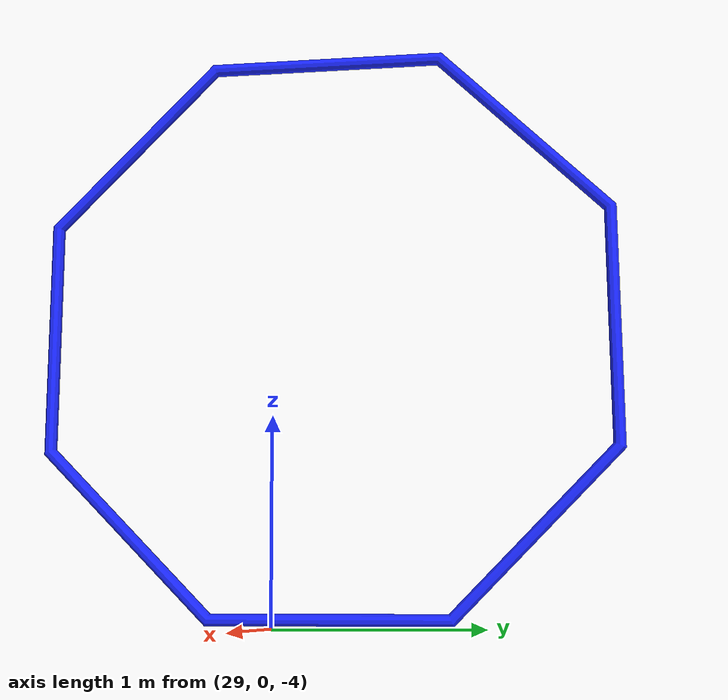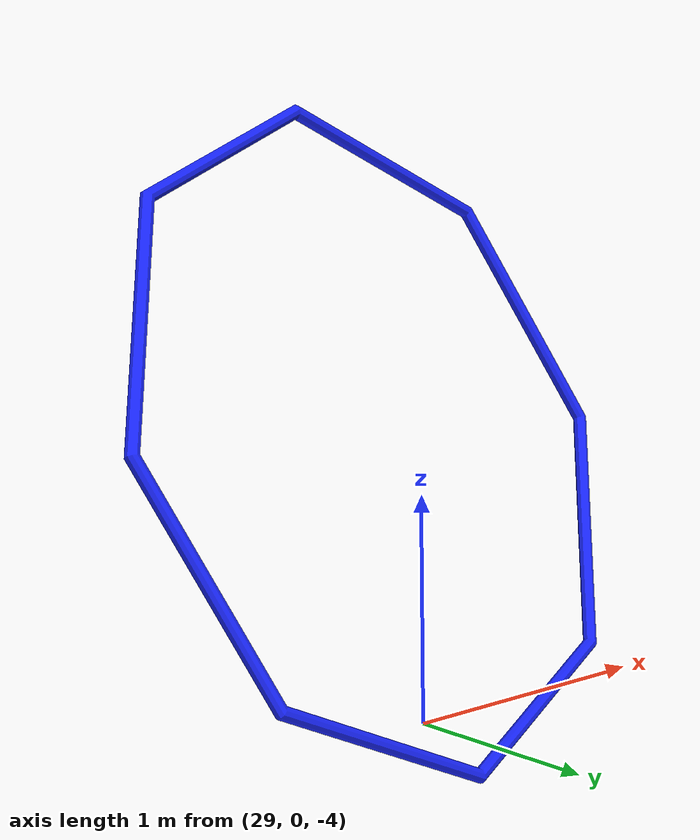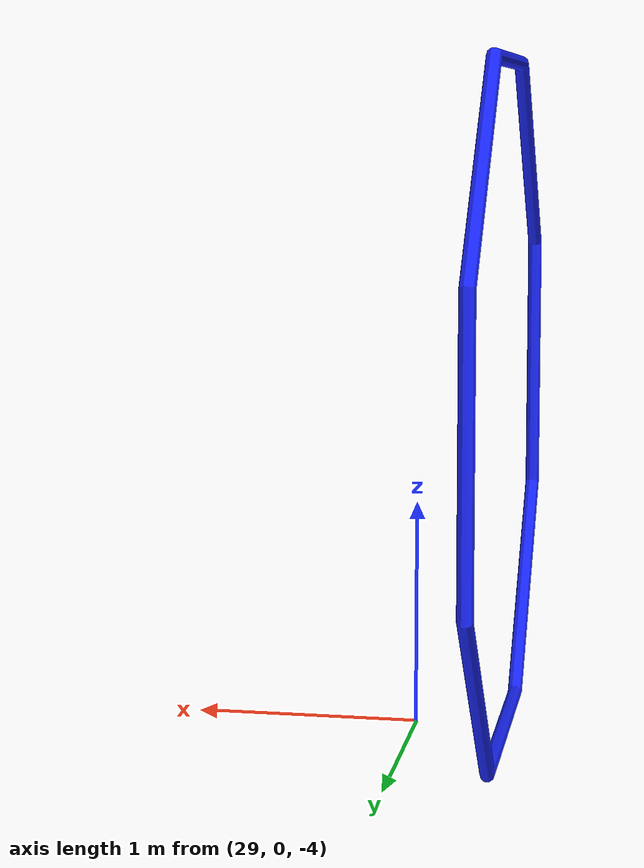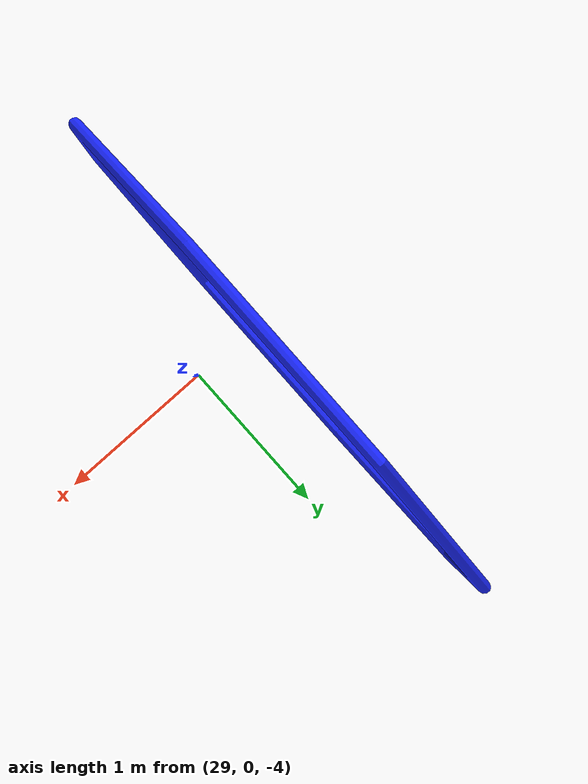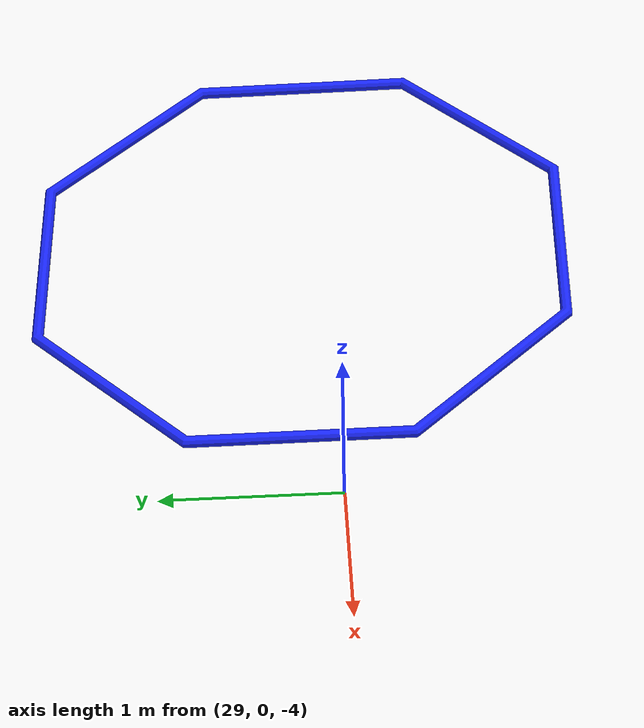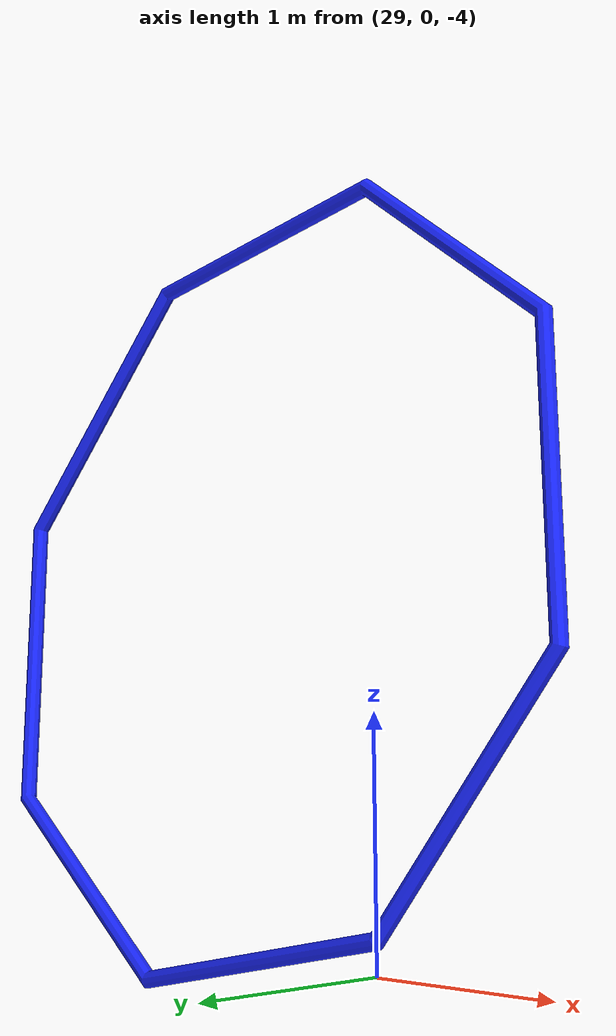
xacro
<?xml version="1.0"?>
<robot name="octagon_1" xmlns:xacro="http://www.ros.org/wiki/xacro">

<!-- Introducir meshes -->
<xacro:property name="visual_mesh_file" value="file://$(find uuv_world)/models/meshes/MyOctagon.dae" />

<link name="octagon_base">
    <visual>
        <origin xyz="28.593435 -0.004454 -4.0" rpy="0.0 0.0 1.57"/>
        <geometry>
            <mesh filename="${visual_mesh_file}" scale="1 1 1" />
        </geometry>
    </visual>

        <!-- Se deben cambiar los parametros reales-->
    <collision>
      <origin xyz="28.593435 -0.004454 -4.0" rpy="0.0 0.0 1.57"/>
      <geometry>
        <mesh filename="${visual_mesh_file}" scale="1 1 1" />
      </geometry>
    </collision>

    <inertial>
      <origin xyz="28.593435 -0.004454 -4.0" rpy="0.0 0.0 1.57"/>
      <mass value="1"/>
      <inertia
        ixx="1.0" ixy="0.0" ixz="0.0"
        iyy="1.0" iyz="0.0"
        izz="1.0"/>
    </inertial>

</link>

</robot>
